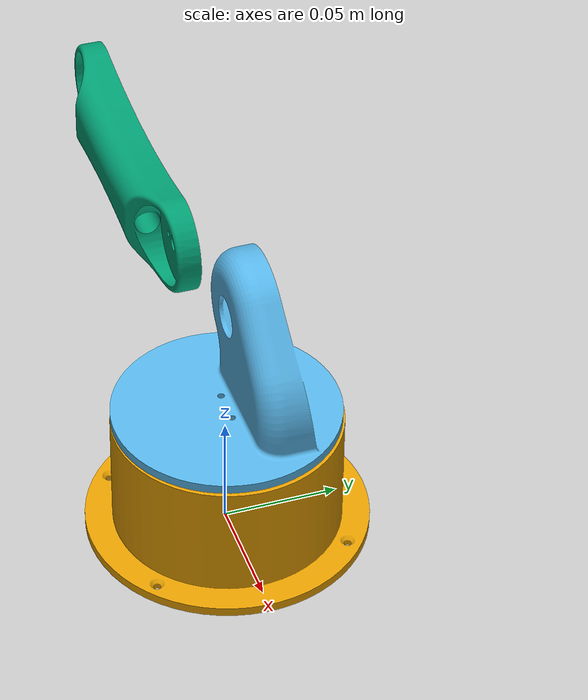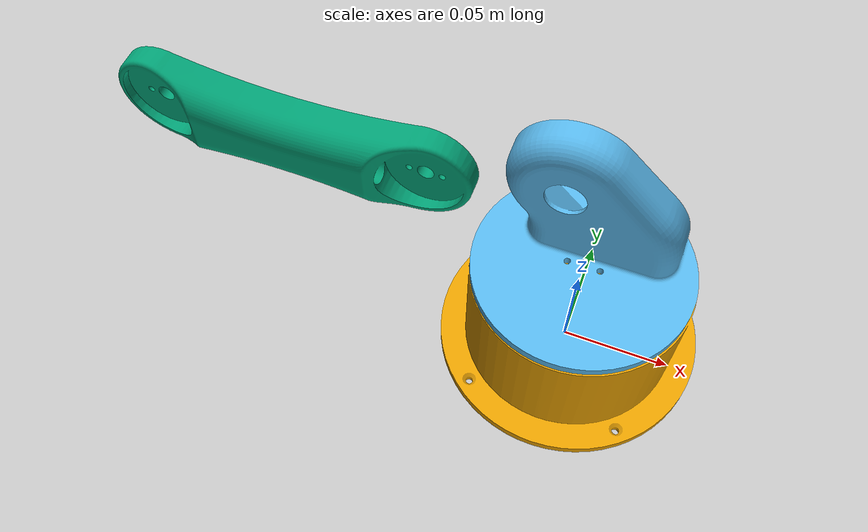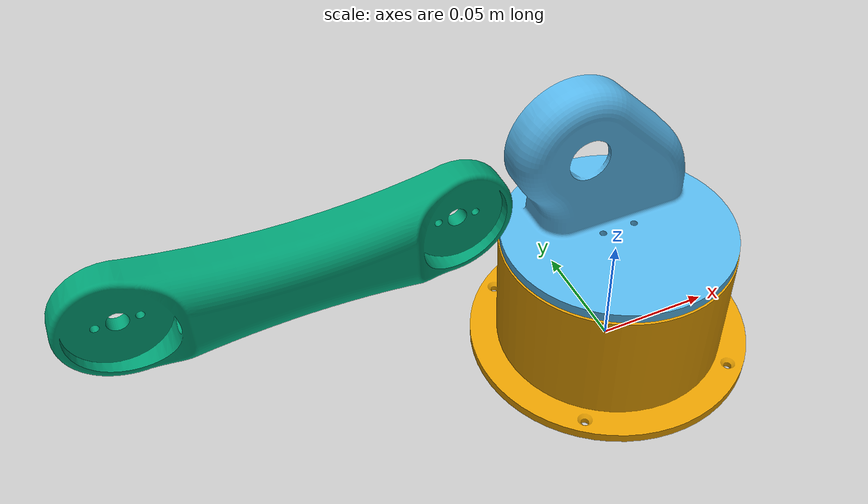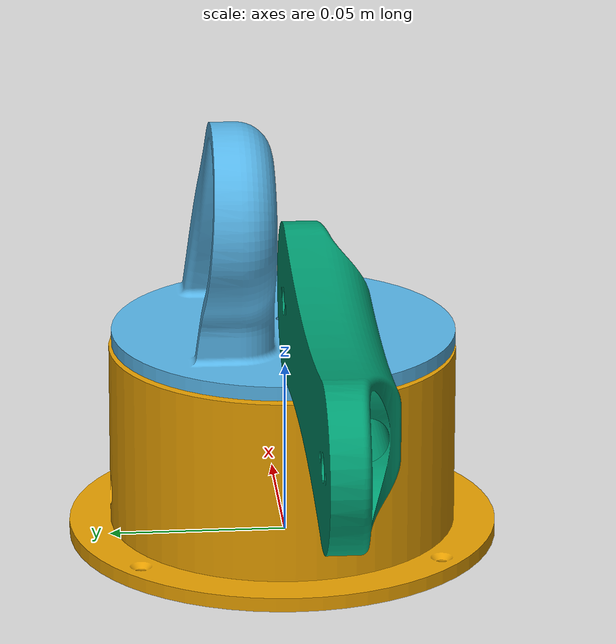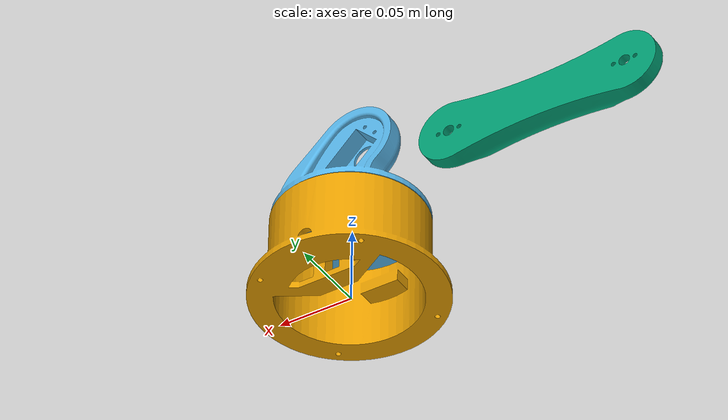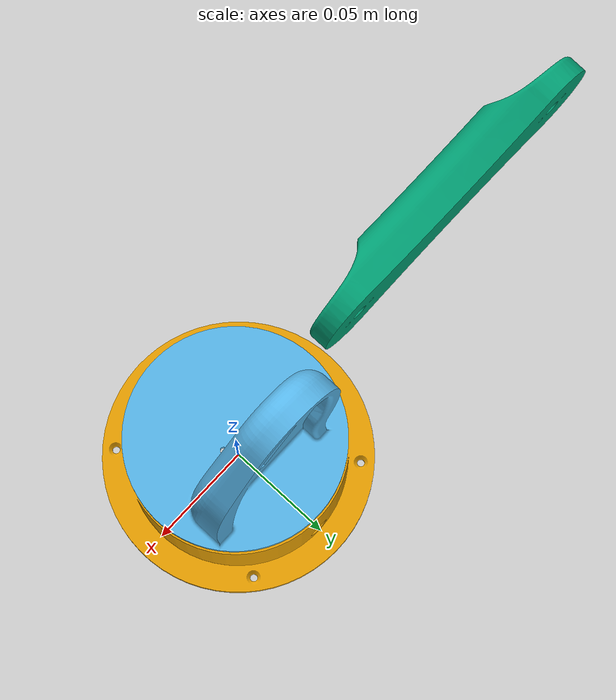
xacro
<?xml version="1.0"?>
<robot name="duman" xmlns:xacro="http://www.ros.org/wiki/xacro">

    <xacro:property name="base_length" value="0.25" />

    <link name="base_link">
        <visual>
            <geometry>
            <mesh filename="package://duman_description/models/Base.STL" scale="0.001 0.001 0.001"/>

            </geometry>
            <origin xyz="-0.06 -0.06 0" rpy="0 0 0" />
        </visual>
    </link>

    <link name="waist_link">
        <visual>
            <geometry>
            <mesh filename="package://duman_description/models/Waist.STL" scale="0.001 0.001 0.001"/>

            </geometry>
            <origin xyz="-0.048 -0.048 0" rpy="1.57 0.0 1.57" />
        </visual>
    </link>

    <link name="link_a">
        <visual>
            <geometry>
            <mesh filename="package://duman_description/models/linka.STL" scale="0.001 0.001 0.001"/>

            </geometry>
            <origin xyz="0.01 0.0 0.0" rpy="0 1.57 1.57" />
        </visual>
    </link>

    <joint name="waist_joint" type="continuous">
        <parent link="base_link" />
        <child link="waist_link" />
            <origin xyz="0 0 0.057" rpy="0 0 0" />
        <axis xyz="0 0 1" />
    </joint>

    <joint name="shoulder_joint" type="continuous">
        <parent link="waist_link" />
        <child link="link_a" />
            <origin xyz="-0.06 -0.015 0.058" rpy="0 0 0" />
        <axis xyz="0 1 0" />
    </joint>

</robot>
